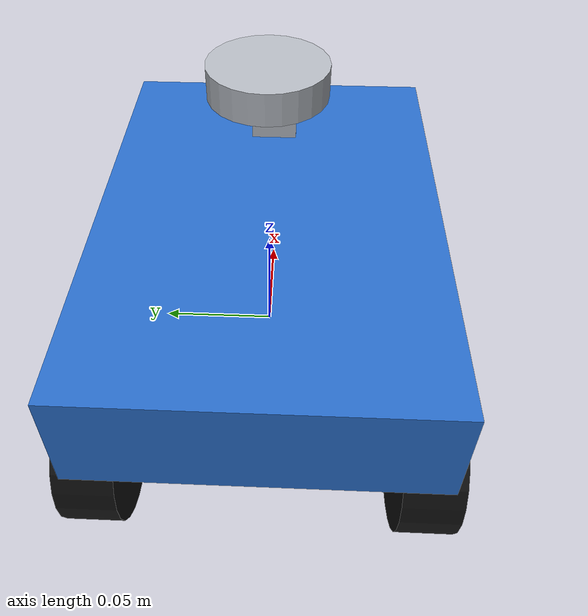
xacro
<?xml version="1.0"?>
<robot name="mentorpi_ackermann" xmlns:xacro="http://ros.org/wiki/xacro">
  <material name="chassis_blue">
    <color rgba="0.16 0.42 0.78 1.0"/>
  </material>
  <material name="matte_black">
    <color rgba="0.08 0.08 0.08 1.0"/>
  </material>
  <material name="sensor_gray">
    <color rgba="0.7 0.72 0.75 1.0"/>
  </material>
  <material name="wheel_marker">
    <color rgba="1.0 0.15 0.05 1.0"/>
  </material>

  <link name="base_footprint"/>

  <link name="base_link">
    <inertial>
      <origin xyz="0 0 -0.014"/>
      <mass value="0.92"/>
      <inertia ixx="0.006" ixy="0" ixz="0" iyy="0.018" iyz="0" izz="0.018"/>
    </inertial>
    <visual>
      <origin xyz="0 0 0.012"/>
      <geometry>
        <box size="0.213 0.145 0.045"/>
      </geometry>
      <material name="chassis_blue"/>
    </visual>
    <collision>
      <origin xyz="0 0 0.012"/>
      <geometry>
        <box size="0.213 0.145 0.045"/>
      </geometry>
    </collision>
  </link>

  <joint name="base_footprint_to_base_link" type="fixed">
    <parent link="base_footprint"/>
    <child link="base_link"/>
    <origin xyz="0 0 0.0335" rpy="0 0 0"/>
  </joint>

  <link name="left_hinge">
    <inertial>
      <origin xyz="0 0 0"/>
      <mass value="0.01"/>
      <inertia ixx="0.000005" ixy="0" ixz="0" iyy="0.000005" iyz="0" izz="0.000005"/>
    </inertial>
  </link>
  <joint name="base_to_left_hinge" type="revolute">
    <parent link="base_link"/>
    <child link="left_hinge"/>
    <origin xyz="0.0725 0.0665 -0.0335" rpy="0 0 0"/>
    <axis xyz="0 0 1"/>
    <limit effort="25" lower="-0.506145" upper="0.506145" velocity="10"/>
  </joint>

  <link name="right_hinge">
    <inertial>
      <origin xyz="0 0 0"/>
      <mass value="0.01"/>
      <inertia ixx="0.000005" ixy="0" ixz="0" iyy="0.000005" iyz="0" izz="0.000005"/>
    </inertial>
  </link>
  <joint name="base_to_right_hinge" type="revolute">
    <parent link="base_link"/>
    <child link="right_hinge"/>
    <origin xyz="0.0725 -0.0665 -0.0335" rpy="0 0 0"/>
    <axis xyz="0 0 1"/>
    <limit effort="25" lower="-0.506145" upper="0.506145" velocity="10"/>
  </joint>

  <link name="left_front_wheel">
    <inertial>
      <origin xyz="0 0 0"/>
      <mass value="0.05"/>
      <inertia ixx="0.00003" ixy="0" ixz="0" iyy="0.00005" iyz="0" izz="0.00003"/>
    </inertial>
    <visual>
      <origin rpy="1.57079632679 0 0"/>
      <geometry>
        <cylinder radius="0.0335" length="0.024"/>
      </geometry>
      <material name="matte_black"/>
    </visual>
    <visual>
      <origin xyz="0.026 0 0"/>
      <geometry>
        <box size="0.012 0.028 0.006"/>
      </geometry>
      <material name="wheel_marker"/>
    </visual>
    <collision>
      <origin rpy="1.57079632679 0 0"/>
      <geometry>
        <cylinder radius="0.0335" length="0.024"/>
      </geometry>
    </collision>
  </link>
  <joint name="left_hinge_to_left_front_wheel" type="continuous">
    <parent link="left_hinge"/>
    <child link="left_front_wheel"/>
    <origin xyz="0 0 0" rpy="0 0 0"/>
    <axis xyz="0 1 0"/>
  </joint>

  <link name="right_front_wheel">
    <inertial>
      <origin xyz="0 0 0"/>
      <mass value="0.05"/>
      <inertia ixx="0.00003" ixy="0" ixz="0" iyy="0.00005" iyz="0" izz="0.00003"/>
    </inertial>
    <visual>
      <origin rpy="1.57079632679 0 0"/>
      <geometry>
        <cylinder radius="0.0335" length="0.024"/>
      </geometry>
      <material name="matte_black"/>
    </visual>
    <visual>
      <origin xyz="0.026 0 0"/>
      <geometry>
        <box size="0.012 0.028 0.006"/>
      </geometry>
      <material name="wheel_marker"/>
    </visual>
    <collision>
      <origin rpy="1.57079632679 0 0"/>
      <geometry>
        <cylinder radius="0.0335" length="0.024"/>
      </geometry>
    </collision>
  </link>
  <joint name="right_hinge_to_right_front_wheel" type="continuous">
    <parent link="right_hinge"/>
    <child link="right_front_wheel"/>
    <origin xyz="0 0 0" rpy="0 0 0"/>
    <axis xyz="0 1 0"/>
  </joint>

  <link name="left_back_wheel">
    <inertial>
      <origin xyz="0 0 0"/>
      <mass value="0.05"/>
      <inertia ixx="0.00003" ixy="0" ixz="0" iyy="0.00005" iyz="0" izz="0.00003"/>
    </inertial>
    <visual>
      <origin rpy="1.57079632679 0 0"/>
      <geometry>
        <cylinder radius="0.0335" length="0.024"/>
      </geometry>
      <material name="matte_black"/>
    </visual>
    <visual>
      <origin xyz="0.026 0 0"/>
      <geometry>
        <box size="0.012 0.028 0.006"/>
      </geometry>
      <material name="wheel_marker"/>
    </visual>
    <collision>
      <origin rpy="1.57079632679 0 0"/>
      <geometry>
        <cylinder radius="0.0335" length="0.024"/>
      </geometry>
    </collision>
  </link>
  <joint name="base_to_left_back_wheel" type="continuous">
    <parent link="base_link"/>
    <child link="left_back_wheel"/>
    <origin xyz="-0.0725 0.0665 -0.0335" rpy="0 0 0"/>
    <axis xyz="0 1 0"/>
  </joint>

  <link name="right_back_wheel">
    <inertial>
      <origin xyz="0 0 0"/>
      <mass value="0.05"/>
      <inertia ixx="0.00003" ixy="0" ixz="0" iyy="0.00005" iyz="0" izz="0.00003"/>
    </inertial>
    <visual>
      <origin rpy="1.57079632679 0 0"/>
      <geometry>
        <cylinder radius="0.0335" length="0.024"/>
      </geometry>
      <material name="matte_black"/>
    </visual>
    <visual>
      <origin xyz="0.026 0 0"/>
      <geometry>
        <box size="0.012 0.028 0.006"/>
      </geometry>
      <material name="wheel_marker"/>
    </visual>
    <collision>
      <origin rpy="1.57079632679 0 0"/>
      <geometry>
        <cylinder radius="0.0335" length="0.024"/>
      </geometry>
    </collision>
  </link>
  <joint name="base_to_right_back_wheel" type="continuous">
    <parent link="base_link"/>
    <child link="right_back_wheel"/>
    <origin xyz="-0.0725 -0.0665 -0.0335" rpy="0 0 0"/>
    <axis xyz="0 1 0"/>
  </joint>

  <link name="depth_cam">
    <inertial>
      <origin xyz="0 0 0"/>
      <mass value="0.03"/>
      <inertia ixx="0.00001" ixy="0" ixz="0" iyy="0.00001" iyz="0" izz="0.00001"/>
    </inertial>
    <visual>
      <geometry>
        <box size="0.04 0.02 0.02"/>
      </geometry>
      <material name="sensor_gray"/>
    </visual>
    <collision>
      <geometry>
        <box size="0.04 0.02 0.02"/>
      </geometry>
    </collision>
  </link>
  <joint name="cam_Joint" type="fixed">
    <origin xyz="0.064015 -0.00013463 0.051155" rpy="0 0 0"/>
    <parent link="base_link"/>
    <child link="depth_cam"/>
  </joint>

  <link name="lidar_frame">
    <inertial>
      <origin xyz="0 0 0"/>
      <mass value="0.03"/>
      <inertia ixx="0.00002" ixy="0" ixz="0" iyy="0.00002" iyz="0" izz="0.00002"/>
    </inertial>
    <visual>
      <origin xyz="0 0 0.006"/>
      <geometry>
        <cylinder radius="0.022" length="0.012"/>
      </geometry>
      <material name="sensor_gray"/>
    </visual>
    <collision>
      <origin xyz="0 0 0.006"/>
      <geometry>
        <cylinder radius="0.022" length="0.012"/>
      </geometry>
    </collision>
  </link>
  <joint name="lidar_Joint" type="fixed">
    <origin xyz="-0.0096019 -0.00008533 0.092501" rpy="0 0 0"/>
    <parent link="base_link"/>
    <child link="lidar_frame"/>
  </joint>

  <link name="imu_link">
    <inertial>
      <origin xyz="0 0 0"/>
      <mass value="0.005"/>
      <inertia ixx="0.000001" ixy="0" ixz="0" iyy="0.000001" iyz="0" izz="0.000001"/>
    </inertial>
  </link>
  <joint name="imu_joint" type="fixed">
    <origin xyz="0.0 0.0 0.045" rpy="0 0 0"/>
    <parent link="base_link"/>
    <child link="imu_link"/>
  </joint>
</robot>
